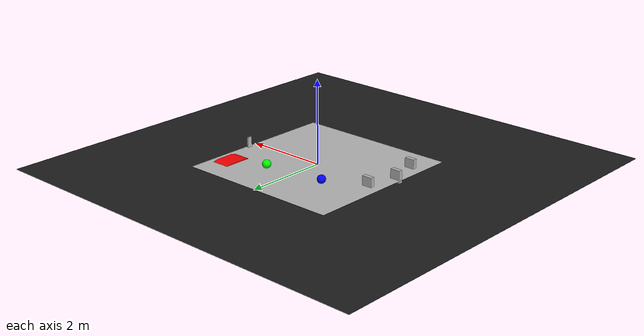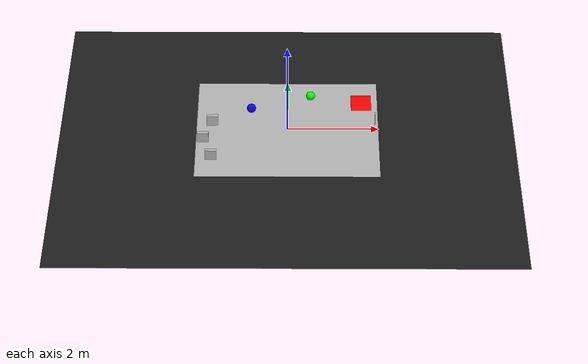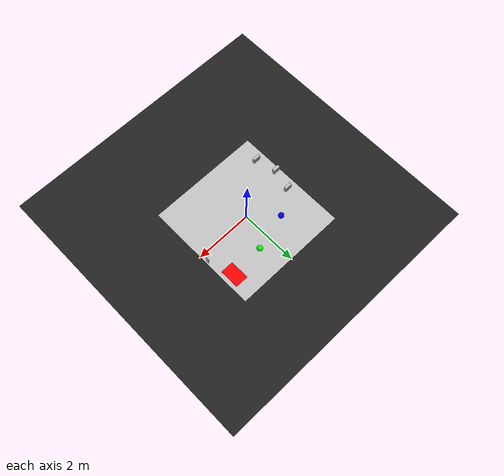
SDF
<sdf version="1.7">
 <world name="default">
  <scene>
   <ambient>0.8 0.8 0.8 1</ambient>
   <shadows>0</shadows>
   <grid>0</grid>
   <background>0.7 0.7 0.7 1</background>
  </scene>
  <model name="course">
   <static>1</static>
   <link name="course_link">
    <collision name="course_collision">
     <geometry><plane><normal>0 0 1</normal><size>4 4</size></plane></geometry>
     <surface><friction><ode><mu>100</mu><mu2>50</mu2></ode></friction></surface>
    </collision>
    <visual name="course_visual">
     <cast_shadows>0</cast_shadows>
     <geometry><plane><normal>0 0 1</normal><size>4 4</size></plane></geometry>
     <material>
      <script>
       <uri>model://turtlebot3_autorace_2020/course/materials/scripts</uri>
       <uri>model://turtlebot3_autorace_2020/course/materials/textures</uri>
       <name>course</name>
      </script>
     </material>
    </visual>
   </link>
   <pose>0 0 0 0 0 -3.14</pose>
  </model>
  <model name="speed_bump">
   <static>1</static>
   <link name="link">
    <visual name="visual">
     <geometry>
      <mesh>
       <uri>model://turtlebot3_autorace_2020/speed_bump/meshes/speed_bump.dae</uri>
       <scale>0.7 1.5 0.9</scale>
      </mesh>
     </geometry>
    </visual>
    <collision name="collision">
     <geometry>
      <mesh>
       <uri>model://turtlebot3_autorace_2020/speed_bump/meshes/speed_bump.dae</uri>
       <scale>0.7 1.5 0.9</scale>
      </mesh>
     </geometry>
    </collision>
   </link>
   <pose>1.40743 1.49122 -0.00022 0 0 -1.56457</pose>
  </model>
  <light name="sun" type="directional">
   <pose>0 0 10 0 -0 0</pose>
   <diffuse>0.8 0.8 0.8 1</diffuse>
   <specular>0.1 0.1 0.1 1</specular>
   <attenuation>
    <range>1000</range>
    <constant>0.9</constant>
    <linear>0.01</linear>
    <quadratic>0.001</quadratic>
   </attenuation>
   <direction>-0.5 0.5 -1</direction>
   <spot><inner_angle>0</inner_angle><outer_angle>0</outer_angle><falloff>0</falloff></spot>
  </light>
  <model name="ground2">
   <pose>-0.012503 -0.386554 -0.1 0 -0 0</pose>
   <static>1</static>
   <link name="ground">
    <collision name="ground_coll"><geometry><box><size>8 8 0.01</size></box></geometry></collision>
    <visual name="ground_vis">
     <geometry><box><size>10 10 0.01</size></box></geometry>
     <material>
      <script><uri>file://media/materials/scripts/gazebo.material</uri><name>Gazebo/FlatBlack</name></script>
     </material>
    </visual>
   </link>
  </model>
  <gravity>0 0 -9.8</gravity>
  <magnetic_field>6e-06 2.3e-05 -4.2e-05</magnetic_field>
  <atmosphere type="adiabatic"/>
  <physics name="default_physics" default="0" type="ode">
   <max_step_size>0.001</max_step_size>
   <real_time_factor>1</real_time_factor>
   <real_time_update_rate>1000</real_time_update_rate>
  </physics>
  <spherical_coordinates>
   <surface_model>EARTH_WGS84</surface_model>
   <latitude_deg>0</latitude_deg>
   <longitude_deg>0</longitude_deg>
   <elevation>0</elevation>
   <heading_deg>0</heading_deg>
  </spherical_coordinates>
  <light name="user_point_light_1" type="point">
   <pose>-1.64815 0.604519 1 0 -0 0</pose>
   <diffuse>0.5 0.5 0.5 1</diffuse>
   <specular>0.1 0.1 0.1 1</specular>
   <attenuation>
    <range>20</range>
    <constant>0.5</constant>
    <linear>0.01</linear>
    <quadratic>0.001</quadratic>
   </attenuation>
   <cast_shadows>0</cast_shadows>
   <direction>0 0 -1</direction>
   <spot><inner_angle>0</inner_angle><outer_angle>0</outer_angle><falloff>0</falloff></spot>
  </light>
  <light name="user_point_light_2" type="point">
   <pose>1.63854 1.69565 1 0 -0 0</pose>
   <diffuse>0.5 0.5 0.5 1</diffuse>
   <specular>0.1 0.1 0.1 1</specular>
   <attenuation>
    <range>20</range>
    <constant>0.5</constant>
    <linear>0.01</linear>
    <quadratic>0.001</quadratic>
   </attenuation>
   <cast_shadows>0</cast_shadows>
   <direction>0 0 -1</direction>
   <spot><inner_angle>0</inner_angle><outer_angle>0</outer_angle><falloff>0</falloff></spot>
  </light>
  <light name="user_point_light_3" type="point">
   <pose>0.42 -3.31 1 0 -0 0</pose>
   <diffuse>0.5 0.5 0.5 1</diffuse>
   <specular>0.1 0.1 0.1 1</specular>
   <attenuation>
    <range>20</range>
    <constant>0.5</constant>
    <linear>0.01</linear>
    <quadratic>0.001</quadratic>
   </attenuation>
   <cast_shadows>0</cast_shadows>
   <direction>0 0 -1</direction>
   <spot><inner_angle>0</inner_angle><outer_angle>0</outer_angle><falloff>0</falloff></spot>
  </light>
  <model name="barrier_1">
   <link name="link">
    <inertial>
     <mass>1</mass>
     <inertia>
      <ixx>0.166667</ixx>
      <ixy>0</ixy>
      <ixz>0</ixz>
      <iyy>0.166667</iyy>
      <iyz>0</iyz>
      <izz>0.166667</izz>
     </inertia>
    </inertial>
    <gravity>0</gravity>
    <visual name="visual">
     <geometry><sphere><radius>0.1</radius></sphere></geometry>
     <material>
      <ambient>0 0 0.3 1</ambient>
      <diffuse>0 0 1 1</diffuse>
      <specular>0.1 0.1 0.1 1</specular>
      <emissive>0 0 0 1</emissive>
      <ambient>0.3 0.3 0.3 1</ambient>
      <diffuse>0.7 0.7 0.7 1</diffuse>
      <specular>0.01 0.01 0.01 1</specular>
      <emissive>0 0 0 1</emissive>
     </material>
    </visual>
    <collision name="collision">
     <geometry><box><size>0.25 0.1 0.3</size></box></geometry>
     <surface>
      <friction>
       <ode><mu>1</mu><mu2>1</mu2><fdir1>0 0 0</fdir1><slip1>0</slip1><slip2>0</slip2></ode>
       <torsional>
        <coefficient>1</coefficient>
        <patch_radius>0</patch_radius>
        <surface_radius>0</surface_radius>
        <use_patch_radius>1</use_patch_radius>
        <ode><slip>0</slip></ode>
       </torsional>
      </friction>
      <bounce><restitution_coefficient>0</restitution_coefficient><threshold>1e+06</threshold></bounce>
      <contact>
       <collide_without_contact>0</collide_without_contact>
       <collide_without_contact_bitmask>1</collide_without_contact_bitmask>
       <collide_bitmask>1</collide_bitmask>
       <ode>
        <soft_cfm>0</soft_cfm>
        <soft_erp>0.2</soft_erp>
        <kp>1e+13</kp>
        <kd>1</kd>
        <max_vel>0.01</max_vel>
        <min_depth>0</min_depth>
       </ode>
       <bullet>
        <split_impulse>1</split_impulse>
        <split_impulse_penetration_threshold>-0.01</split_impulse_penetration_threshold>
        <soft_cfm>0</soft_cfm>
        <soft_erp>0.2</soft_erp>
        <kp>1e+13</kp>
        <kd>1</kd>
       </bullet>
      </contact>
     </surface>
    </collision>
   </link>
   <static>0</static>
   <plugin name="barrier1_plugin" filename="libbarrier1_plugin.so"/>
   <pose>-0.803572 0.752441 0.090515 -1.3787 0.100117 0.003609</pose>
  </model>
  <model name="barrier_2">
   <link name="link">
    <inertial>
     <mass>1</mass>
     <inertia>
      <ixx>0.166667</ixx>
      <ixy>0</ixy>
      <ixz>0</ixz>
      <iyy>0.166667</iyy>
      <iyz>0</iyz>
      <izz>0.166667</izz>
     </inertia>
    </inertial>
    <visual name="visual">
     <geometry><box><size>0.25 0.1 0.3</size></box></geometry>
     <material>
      <ambient>0.3 0.3 0.3 1</ambient>
      <diffuse>0.7 0.7 0.7 1</diffuse>
      <specular>0.01 0.01 0.01 1</specular>
      <emissive>0 0 0 1</emissive>
     </material>
    </visual>
    <collision name="collision">
     <geometry><box><size>0.25 0.1 0.3</size></box></geometry>
     <surface>
      <friction>
       <ode><mu>1</mu><mu2>1</mu2><fdir1>0 0 0</fdir1><slip1>0</slip1><slip2>0</slip2></ode>
       <torsional>
        <coefficient>1</coefficient>
        <patch_radius>0</patch_radius>
        <surface_radius>0</surface_radius>
        <use_patch_radius>1</use_patch_radius>
        <ode><slip>0</slip></ode>
       </torsional>
      </friction>
      <bounce><restitution_coefficient>0</restitution_coefficient><threshold>1e+06</threshold></bounce>
      <contact>
       <collide_without_contact>0</collide_without_contact>
       <collide_without_contact_bitmask>1</collide_without_contact_bitmask>
       <collide_bitmask>1</collide_bitmask>
       <ode>
        <soft_cfm>0</soft_cfm>
        <soft_erp>0.2</soft_erp>
        <kp>1e+13</kp>
        <kd>1</kd>
        <max_vel>0.01</max_vel>
        <min_depth>0</min_depth>
       </ode>
       <bullet>
        <split_impulse>1</split_impulse>
        <split_impulse_penetration_threshold>-0.01</split_impulse_penetration_threshold>
        <soft_cfm>0</soft_cfm>
        <soft_erp>0.2</soft_erp>
        <kp>1e+13</kp>
        <kd>1</kd>
       </bullet>
      </contact>
     </surface>
    </collision>
   </link>
   <static>0</static>
   <pose>-1.84814 -0.525911 0.075 2e-06 -6e-06 3.13641</pose>
  </model>
  <model name="barrier_3">
   <link name="link">
    <inertial>
     <mass>1</mass>
     <inertia>
      <ixx>0.166667</ixx>
      <ixy>0</ixy>
      <ixz>0</ixz>
      <iyy>0.166667</iyy>
      <iyz>0</iyz>
      <izz>0.166667</izz>
     </inertia>
    </inertial>
    <visual name="visual">
     <geometry><box><size>0.25 0.1 0.3</size></box></geometry>
     <material>
      <ambient>0.3 0.3 0.3 1</ambient>
      <diffuse>0.7 0.7 0.7 1</diffuse>
      <specular>0.01 0.01 0.01 1</specular>
      <emissive>0 0 0 1</emissive>
     </material>
    </visual>
    <collision name="collision">
     <geometry><box><size>0.25 0.1 0.3</size></box></geometry>
     <surface>
      <friction>
       <ode><mu>1</mu><mu2>1</mu2><fdir1>0 0 0</fdir1><slip1>0</slip1><slip2>0</slip2></ode>
       <torsional>
        <coefficient>1</coefficient>
        <patch_radius>0</patch_radius>
        <surface_radius>0</surface_radius>
        <use_patch_radius>1</use_patch_radius>
        <ode><slip>0</slip></ode>
       </torsional>
      </friction>
      <bounce><restitution_coefficient>0</restitution_coefficient><threshold>1e+06</threshold></bounce>
      <contact>
       <collide_without_contact>0</collide_without_contact>
       <collide_without_contact_bitmask>1</collide_without_contact_bitmask>
       <collide_bitmask>1</collide_bitmask>
       <ode>
        <soft_cfm>0</soft_cfm>
        <soft_erp>0.2</soft_erp>
        <kp>1e+13</kp>
        <kd>1</kd>
        <max_vel>0.01</max_vel>
        <min_depth>0</min_depth>
       </ode>
       <bullet>
        <split_impulse>1</split_impulse>
        <split_impulse_penetration_threshold>-0.01</split_impulse_penetration_threshold>
        <soft_cfm>0</soft_cfm>
        <soft_erp>0.2</soft_erp>
        <kp>1e+13</kp>
        <kd>1</kd>
       </bullet>
      </contact>
     </surface>
    </collision>
   </link>
   <static>0</static>
   <pose>-1.66013 -1.26015 0.075 0 3e-06 -0.014145</pose>
  </model>
  <audio><device>default</device></audio>
  <model name="barrier_1_clone">
   <link name="link">
    <inertial>
     <mass>1</mass>
     <inertia>
      <ixx>0.166667</ixx>
      <ixy>0</ixy>
      <ixz>0</ixz>
      <iyy>0.166667</iyy>
      <iyz>0</iyz>
      <izz>0.166667</izz>
     </inertia>
    </inertial>
    <gravity>0</gravity>
    <visual name="visual">
     <geometry><sphere><radius>0.1</radius></sphere></geometry>
     <material>
      <ambient>0 0.3 0 1</ambient>
      <diffuse>0 1 0 1</diffuse>
      <specular>0.1 0.1 0.1 1</specular>
      <emissive>0 0 0 1</emissive>
      <ambient>0.3 0.3 0.3 1</ambient>
      <diffuse>0.7 0.7 0.7 1</diffuse>
      <specular>0.01 0.01 0.01 1</specular>
      <emissive>0 0 0 1</emissive>
     </material>
    </visual>
    <collision name="collision">
     <geometry><box><size>0.25 0.1 0.3</size></box></geometry>
     <surface>
      <friction>
       <ode><mu>1</mu><mu2>1</mu2><fdir1>0 0 0</fdir1><slip1>0</slip1><slip2>0</slip2></ode>
       <torsional>
        <coefficient>1</coefficient>
        <patch_radius>0</patch_radius>
        <surface_radius>0</surface_radius>
        <use_patch_radius>1</use_patch_radius>
        <ode><slip>0</slip></ode>
       </torsional>
      </friction>
      <bounce><restitution_coefficient>0</restitution_coefficient><threshold>1e+06</threshold></bounce>
      <contact>
       <collide_without_contact>0</collide_without_contact>
       <collide_without_contact_bitmask>1</collide_without_contact_bitmask>
       <collide_bitmask>1</collide_bitmask>
       <ode>
        <soft_cfm>0</soft_cfm>
        <soft_erp>0.2</soft_erp>
        <kp>1e+13</kp>
        <kd>1</kd>
        <max_vel>0.01</max_vel>
        <min_depth>0</min_depth>
       </ode>
       <bullet>
        <split_impulse>1</split_impulse>
        <split_impulse_penetration_threshold>-0.01</split_impulse_penetration_threshold>
        <soft_cfm>0</soft_cfm>
        <soft_erp>0.2</soft_erp>
        <kp>1e+13</kp>
        <kd>1</kd>
       </bullet>
      </contact>
     </surface>
    </collision>
   </link>
   <static>0</static>
   <plugin name="barrier1_clone_plugin" filename="libbarrier1_clone_plugin.so"/>
   <pose>0.509254 1.11527 0.201406 0.037892 0.833386 1.78302</pose>
  </model>
  <model name="barrier_3_clone">
   <link name="link">
    <inertial>
     <mass>1</mass>
     <inertia>
      <ixx>0.166667</ixx>
      <ixy>0</ixy>
      <ixz>0</ixz>
      <iyy>0.166667</iyy>
      <iyz>0</iyz>
      <izz>0.166667</izz>
     </inertia>
    </inertial>
    <visual name="visual">
     <geometry><box><size>0.25 0.1 0.3</size></box></geometry>
     <material>
      <ambient>0.3 0.3 0.3 1</ambient>
      <diffuse>0.7 0.7 0.7 1</diffuse>
      <specular>0.01 0.01 0.01 1</specular>
      <emissive>0 0 0 1</emissive>
     </material>
    </visual>
    <collision name="collision">
     <geometry><box><size>0.25 0.1 0.3</size></box></geometry>
     <surface>
      <friction>
       <ode><mu>1</mu><mu2>1</mu2><fdir1>0 0 0</fdir1><slip1>0</slip1><slip2>0</slip2></ode>
       <torsional>
        <coefficient>1</coefficient>
        <patch_radius>0</patch_radius>
        <surface_radius>0</surface_radius>
        <use_patch_radius>1</use_patch_radius>
        <ode><slip>0</slip></ode>
       </torsional>
      </friction>
      <bounce><restitution_coefficient>0</restitution_coefficient><threshold>1e+06</threshold></bounce>
      <contact>
       <collide_without_contact>0</collide_without_contact>
       <collide_without_contact_bitmask>1</collide_without_contact_bitmask>
       <collide_bitmask>1</collide_bitmask>
       <ode>
        <soft_cfm>0</soft_cfm>
        <soft_erp>0.2</soft_erp>
        <kp>1e+13</kp>
        <kd>1</kd>
        <max_vel>0.01</max_vel>
        <min_depth>0</min_depth>
       </ode>
       <bullet>
        <split_impulse>1</split_impulse>
        <split_impulse_penetration_threshold>-0.01</split_impulse_penetration_threshold>
        <soft_cfm>0</soft_cfm>
        <soft_erp>0.2</soft_erp>
        <kp>1e+13</kp>
        <kd>1</kd>
       </bullet>
      </contact>
     </surface>
    </collision>
   </link>
   <static>0</static>
   <pose>-1.6599 0.196331 0.074991 1e-06 -7e-06 -3.13105</pose>
  </model>
  <model name="traffic_intersection_clone">
   <static>1</static>
   <link name="box">
    <collision name="collision"><geometry><box><size>0.12 0.025 0.25</size></box></geometry></collision>
    <visual name="visual">
     <geometry><box><size>0.12 0.025 0.25</size></box></geometry>
     <material>
      <script>
       <uri>model://turtlebot3_autorace_2020/traffic_intersection_clone/materials/scripts</uri>
       <uri>model://turtlebot3_autorace_2020/traffic_intersection_clone/materials/textures</uri>
       <name>traffic_intersection_clone</name>
      </script>
     </material>
    </visual>
   </link>
   <pose>1.93673 0.263868 0.125 0 0 -1.59931</pose>
  </model>
 </world>
</sdf>
